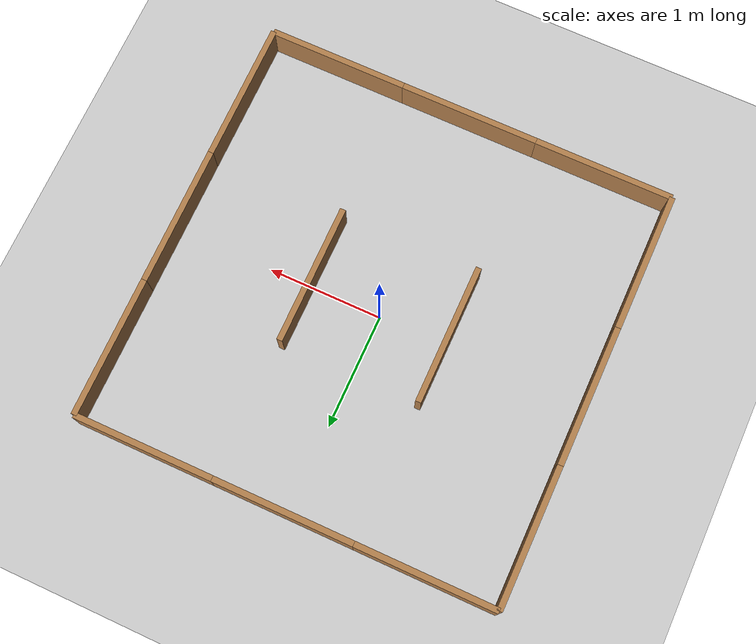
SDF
<?xml version="1.0" ?>
<sdf version="1.8">
  <world name="group4_custom">

       <!-- Perímetro exterior: cuadrado de 3,6 x 3,6 m -->
    <!-- Paredes norte y sur -->
    <include>
      <name>wall_north_left</name>
      <uri>model://wall120cm</uri>
      <pose>-1.2 1.8 0.15 0 0 0</pose>
    </include>
    <include>
      <name>wall_north_center</name>
      <uri>model://wall120cm</uri>
      <pose>0 1.8 0.15 0 0 0</pose>
    </include>
    <include>
      <name>wall_north_right</name>
      <uri>model://wall120cm</uri>
      <pose>1.2 1.8 0.15 0 0 0</pose>
    </include>

    <include>
      <name>wall_south_left</name>
      <uri>model://wall120cm</uri>
      <pose>-1.2 -1.8 0.15 0 0 0</pose>
    </include>
    <include>
      <name>wall_south_center</name>
      <uri>model://wall120cm</uri>
      <pose>0 -1.8 0.15 0 0 0</pose>
    </include>
    <include>
      <name>wall_south_right</name>
      <uri>model://wall120cm</uri>
      <pose>1.2 -1.8 0.15 0 0 0</pose>
    </include>

    <!-- Paredes este y oeste -->
    <include>
      <name>wall_east_lower</name>
      <uri>model://wall120cm</uri>
      <pose>1.8 -1.2 0.15 0 0 1.5708</pose>
    </include>
    <include>
      <name>wall_east_center</name>
      <uri>model://wall120cm</uri>
      <pose>1.8 0 0.15 0 0 1.5708</pose>
    </include>
    <include>
      <name>wall_east_upper</name>
      <uri>model://wall120cm</uri>
      <pose>1.8 1.2 0.15 0 0 1.5708</pose>
    </include>

    <include>
      <name>wall_west_lower</name>
      <uri>model://wall120cm</uri>
      <pose>-1.8 -1.2 0.15 0 0 1.5708</pose>
    </include>
    <include>
      <name>wall_west_center</name>
      <uri>model://wall120cm</uri>
      <pose>-1.8 0 0.15 0 0 1.5708</pose>
    </include>
    <include>
      <name>wall_west_upper</name>
      <uri>model://wall120cm</uri>
      <pose>-1.8 1.2 0.15 0 0 1.5708</pose>
    </include>

    <!-- Paredes interiores: dejan pasos amplios por arriba y por abajo -->
    <include>
      <name>internal_wall_left</name>
      <uri>model://wall120cm</uri>
      <pose>-0.6 0 0.15 0 0 1.5708</pose>
    </include>
    <include>
      <name>internal_wall_right</name>
      <uri>model://wall120cm</uri>
      <pose>0.6 0 0.15 0 0 1.5708</pose>
    </include>

    <physics name="default_physics" type="ode">
        <max_step_size>0.005</max_step_size>
        <real_time_factor>1.0</real_time_factor>
        <real_time_update_rate>200</real_time_update_rate>
    </physics>

    <!-- Core Ignition systems (Fortress / Gazebo6) -->
    <plugin filename="libignition-gazebo6-physics-system.so"
            name="ignition::gazebo::systems::Physics"/>

    <plugin filename="libignition-gazebo6-user-commands-system.so"
            name="ignition::gazebo::systems::UserCommands"/>

    <plugin filename="libignition-gazebo6-scene-broadcaster-system.so"
            name="ignition::gazebo::systems::SceneBroadcaster"/>

    <plugin filename="libignition-gazebo6-sensors-system.so"
            name="ignition::gazebo::systems::Sensors"/>

    <!-- Scene configuration -->
    <scene>
      <ambient>0.6 0.6 0.6 1</ambient>
      <background>0.8 0.8 0.8 1</background>
      <shadows>false</shadows>
      <grid>true</grid>
    </scene>

    <!-- Sun light -->
    <light type="directional" name="sun">
      <cast_shadows>false</cast_shadows>
      <pose>0 0 10 0 0 0</pose>
      <diffuse>0.8 0.8 0.8 1</diffuse>
      <specular>0.2 0.2 0.2 1</specular>
      <direction>-0.5 0.1 -0.9</direction>
    </light>

    <!-- Ground plane -->
    <model name="ground_plane">
      <static>true</static>
      <link name="link">
        <collision name="collision">
          <geometry>
            <plane>
              <normal>0 0 1</normal>
              <size>20 20</size>
            </plane>
          </geometry>
        </collision>

        <visual name="visual">
          <geometry>
            <plane>
              <normal>0 0 1</normal>
              <size>20 20</size>
            </plane>
          </geometry>
          <material>
            <ambient>0.8 0.8 0.8 1</ambient>
            <diffuse>0.8 0.8 0.8 1</diffuse>
            <specular>0.1 0.1 0.1 1</specular>
          </material>
        </visual>
      </link>
    </model>

    <!-- Gazebo Fortress GUI -->
    <gui fullscreen="0">
      <plugin filename="MinimalScene" name="3D View">
        <gz-gui>
          <title>3D View</title>
          <property type="bool" key="showTitleBar">false</property>
          <property type="string" key="state">docked</property>
        </gz-gui>
        <engine>ogre2</engine>
        <scene>scene</scene>
        <camera_pose>0 0 2.5 0 1.5708 0</camera_pose>
      </plugin>

      <plugin filename="GzSceneManager" name="Scene Manager">
        <gz-gui>
          <property key="resizable" type="bool">false</property>
          <property key="width" type="double">1</property>
          <property key="height" type="double">1</property>
          <property key="state" type="string">floating</property>
          <property key="showTitleBar" type="bool">false</property>
        </gz-gui>
      </plugin>

      <plugin filename="InteractiveViewControl" name="Interactive view control">
        <gz-gui>
          <property key="resizable" type="bool">false</property>
          <property key="width" type="double">1</property>
          <property key="height" type="double">1</property>
          <property key="state" type="string">floating</property>
          <property key="showTitleBar" type="bool">false</property>
        </gz-gui>
      </plugin>

      <plugin filename="EntityContextMenuPlugin" name="Entity context menu">
        <gz-gui>
          <property key="resizable" type="bool">false</property>
          <property key="width" type="double">1</property>
          <property key="height" type="double">1</property>
          <property key="state" type="string">floating</property>
          <property key="showTitleBar" type="bool">false</property>
        </gz-gui>
      </plugin>

      <plugin filename="CameraTracking" name="Camera Tracking">
        <gz-gui>
          <property key="width" type="double">1</property>
          <property key="height" type="double">1</property>
          <property key="state" type="string">floating</property>
          <property key="showTitleBar" type="bool">false</property>
        </gz-gui>
      </plugin>

      <plugin filename="ComponentInspector" name="Component inspector"/>
      <plugin filename="EntityTree" name="Entity tree"/>
    </gui>

  </world>
</sdf>

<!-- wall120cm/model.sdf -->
<sdf version='1.7'>
  <model name='wall120cm'>
    <pose>0 0 0 0 0 0</pose>
    <link name='Wall_11'>
      <collision name='Wall_11_Collision'>
        <geometry>
          <box>
            <size>1.2 0.05 0.3</size>
          </box>
        </geometry>
        <pose>0 0 0.15 0 -0 0</pose>
      </collision>
      <visual name='Wall_11_Visual'>
        <pose>0 0 0.15 0 -0 0</pose>
        <geometry>
          <box>
            <size>1.2 0.05 0.3</size>
          </box>
        </geometry>
        <material>
          <script>
            <uri>file://media/materials/scripts/gazebo.material</uri>
            <name>Gazebo/Wood</name>
          </script>
          <ambient>1 1 1 1</ambient>
        </material>
        <meta>
          <layer>0</layer>
        </meta>
      </visual>
      <pose>0 0 0 0 0 0</pose>
    </link>
    <static>1</static>
  </model>
</sdf>
